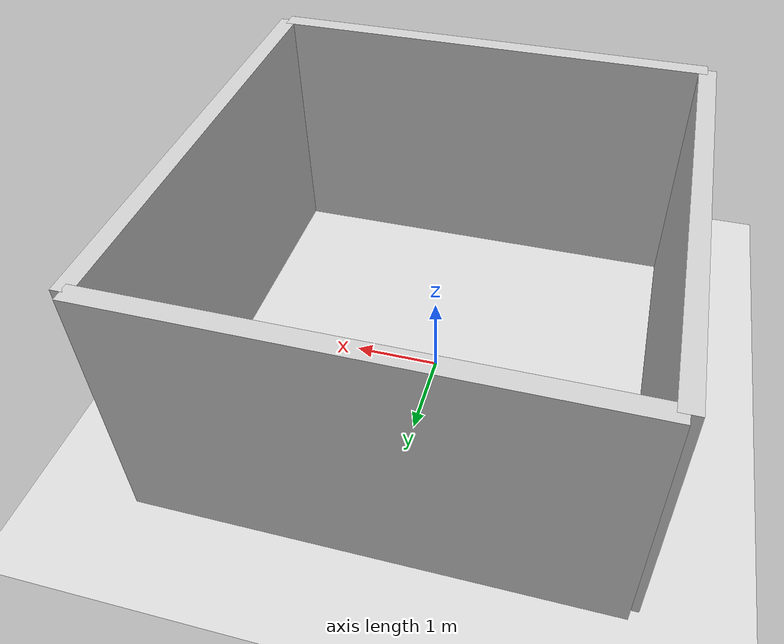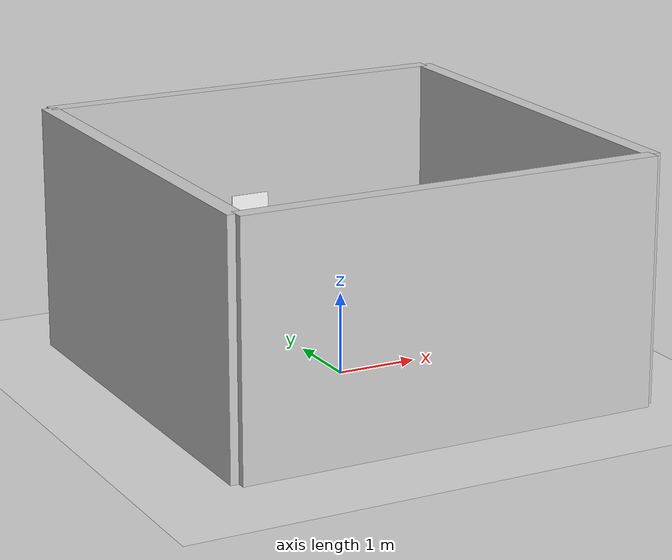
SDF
<?xml version="1.0"?>
<!-- small_room.world — mirrors Phase 2 hardware test environment:
     a single room (~5 m × 5 m) with one "Room 301" sign on the far wall.
     Robot starts at origin facing +X.  -->
<sdf version="1.9">
  <world name="small_room">

    <gravity>0 0 -9.8</gravity>
    <magnetic_field>6e-06 2.3e-05 -4.2e-05</magnetic_field>
    <atmosphere type="adiabatic"/>

    <scene>
      <sky/>
      <grid>false</grid>
      <ambient>0.4 0.4 0.4 1</ambient>
      <background>0.7 0.7 0.7 1</background>
    </scene>

    <physics name="1ms" type="ode">
      <max_step_size>0.001</max_step_size>
      <real_time_factor>1.0</real_time_factor>
    </physics>

    <!-- Required Ignition plugins -->
    <plugin filename="gz-sim-physics-system"         name="gz::sim::systems::Physics"/>
    <plugin filename="gz-sim-sensors-system"          name="gz::sim::systems::Sensors">
      <render_engine>ogre2</render_engine>
    </plugin>
    <plugin filename="gz-sim-scene-broadcaster-system" name="gz::sim::systems::SceneBroadcaster"/>
    <plugin filename="gz-sim-user-commands-system"   name="gz::sim::systems::UserCommands"/>

    <!-- Sun -->
    <light type="directional" name="sun">
      <cast_shadows>true</cast_shadows>
      <pose>0 0 10 0 0 0</pose>
      <diffuse>0.9 0.9 0.9 1</diffuse>
      <specular>0.3 0.3 0.3 1</specular>
      <direction>-0.5 0.1 -0.9</direction>
    </light>

    <!-- Overhead fill light (indoor feel) -->
    <light type="point" name="room_light">
      <pose>0 0 2.8 0 0 0</pose>
      <diffuse>0.7 0.7 0.7 1</diffuse>
      <specular>0.1 0.1 0.1 1</specular>
      <attenuation>
        <range>10</range>
        <constant>0.5</constant>
        <linear>0.01</linear>
        <quadratic>0.001</quadratic>
      </attenuation>
    </light>

    <!-- Ground plane -->
    <model name="ground_plane">
      <static>true</static>
      <link name="link">
        <collision name="collision">
          <geometry><plane><normal>0 0 1</normal><size>20 20</size></plane></geometry>
        </collision>
        <visual name="visual">
          <geometry><plane><normal>0 0 1</normal><size>20 20</size></plane></geometry>
          <material>
            <ambient>0.85 0.85 0.85 1</ambient>
            <diffuse>0.85 0.85 0.85 1</diffuse>
          </material>
        </visual>
      </link>
    </model>

    <!-- ── Walls ───────────────────────────────────────────────────── -->
    <!-- Wall thickness: 0.2 m. Room interior: 5 m × 5 m (−2.5..2.5) -->

    <!-- South wall (y = −2.5) — robot side, with gap for entry -->
    <model name="wall_south">
      <static>true</static>
      <pose>0 -2.6 1.5 0 0 0</pose>
      <link name="link">
        <collision name="c"><geometry><box><size>5.2 0.2 3.0</size></box></geometry></collision>
        <visual name="v"><geometry><box><size>5.2 0.2 3.0</size></box></geometry>
          <material><ambient>0.8 0.8 0.8 1</ambient></material></visual>
      </link>
    </model>

    <!-- North wall (y = +2.5) — far wall with room sign -->
    <model name="wall_north">
      <static>true</static>
      <pose>0 2.6 1.5 0 0 0</pose>
      <link name="link">
        <collision name="c"><geometry><box><size>5.2 0.2 3.0</size></box></geometry></collision>
        <visual name="v"><geometry><box><size>5.2 0.2 3.0</size></box></geometry>
          <material><ambient>0.8 0.8 0.8 1</ambient></material></visual>
      </link>
    </model>

    <!-- West wall (x = −2.5) -->
    <model name="wall_west">
      <static>true</static>
      <pose>-2.6 0 1.5 0 0 0</pose>
      <link name="link">
        <collision name="c"><geometry><box><size>0.2 5.2 3.0</size></box></geometry></collision>
        <visual name="v"><geometry><box><size>0.2 5.2 3.0</size></box></geometry>
          <material><ambient>0.8 0.8 0.8 1</ambient></material></visual>
      </link>
    </model>

    <!-- East wall (x = +2.5) -->
    <model name="wall_east">
      <static>true</static>
      <pose>2.6 0 1.5 0 0 0</pose>
      <link name="link">
        <collision name="c"><geometry><box><size>0.2 5.2 3.0</size></box></geometry></collision>
        <visual name="v"><geometry><box><size>0.2 5.2 3.0</size></box></geometry>
          <material><ambient>0.8 0.8 0.8 1</ambient></material></visual>
      </link>
    </model>

    <!-- ── Room 301 sign on north wall ───────────────────────────── -->
    <model name="room_sign_301">
      <static>true</static>
      <!-- On the north wall, at 1.5 m height, facing south (−Y direction) -->
      <pose>0 2.45 1.5 0 0 3.14159</pose>
      <link name="sign">
        <visual name="placard">
          <geometry><box><size>0.5 0.01 0.25</size></box></geometry>
          <material>
            <!-- White background -->
            <ambient>1.0 1.0 1.0 1</ambient>
            <diffuse>1.0 1.0 1.0 1</diffuse>
            <specular>0.1 0.1 0.1 1</specular>
          </material>
        </visual>
        <!-- Number text as a dark overlay box (approximation) -->
        <visual name="text_301">
          <pose>0 -0.006 0 0 0 0</pose>
          <geometry><box><size>0.35 0.01 0.15</size></box></geometry>
          <material>
            <ambient>0.1 0.1 0.1 1</ambient>
            <diffuse>0.1 0.1 0.1 1</diffuse>
          </material>
        </visual>
      </link>
    </model>

    <!-- ── Robot spawn ─────────────────────────────────────────────── -->
    <!-- The Ridgeback is spawned here by sim.launch.py via SpawnEntity.
         Start pose: 1 m inside the south entry, facing north (+Y). -->
    <!-- spawn_pose: 0 -1.5 0.1   rpy: 0 0 1.5708 -->

  </world>
</sdf>
